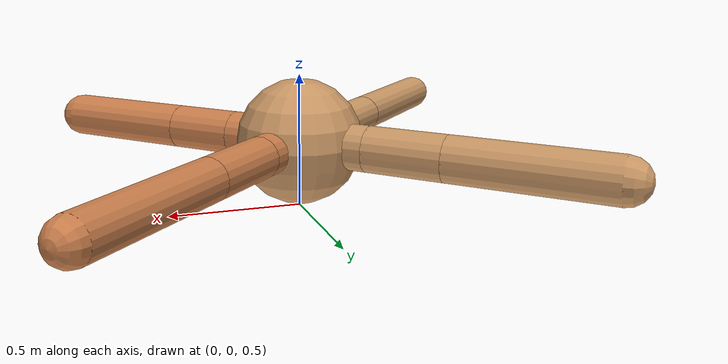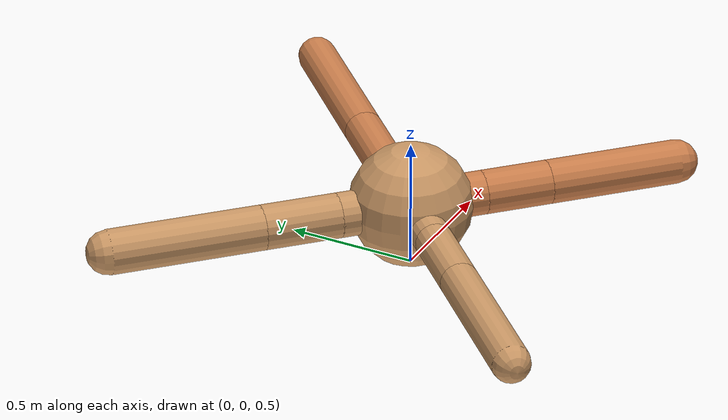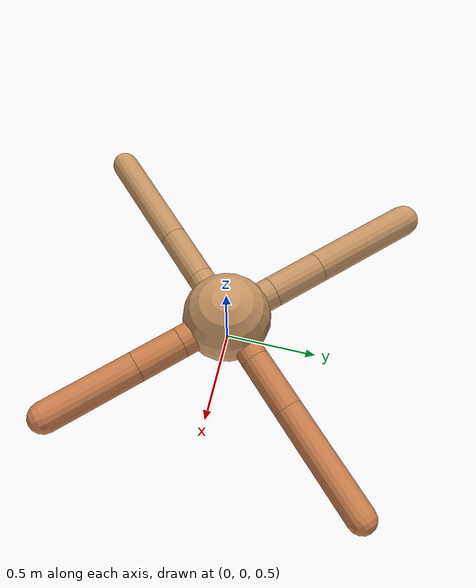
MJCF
<?xml version="1.0" ?>
<mujoco model="ant">

	<compiler angle="degree" coordinate="local" inertiafromgeom="true"/>

	<option integrator="RK4" timestep="0.01"/>

	<custom>

		<numeric data="0.0 0.0 0.55 1.0 0.0 0.0 0.0 0.0 1.0 0.0 -1.0 0.0 -1.0 0.0 1.0" name="init_qpos"/>

	</custom>

	<default>

		<joint armature="1" damping="1" limited="true"/>

		<geom conaffinity="0" condim="3" density="5.0" friction="1.5 0.1 0.1" margin="0.01" rgba="0.8 0.6 0.4 1"/>

	</default>

	<worldbody>

		<body name="torso" pos="0 0 0.75">

			<geom name="torso_geom" pos="0 0 0" size="0.235405755422164" type="sphere"/>

			<!--joint armature="0" damping="0" limited="false" margin="0.01" name="root" pos="0 0 0" type="free"/-->

			<body name="front_left_leg" pos="0 0 0">

				<geom fromto="0 0 0 0.2 0.2 0" name="aux_1_geom" size="0.07502529329345674" type="capsule" rgba=".8 .5 .3 1"/>

				<body name="aux_1" pos="0.2 0.2 0">

					<joint axis="0 0 1" name="hip_1" pos="0.0 0.0 0.0" range="-40 40" type="hinge"/>

					<geom fromto="0 0 0 0.21893847318781612 0.21893847318781612 0" name="left_leg_geom" size="0.07502529329345674" type="capsule" rgba=".8 .5 .3 1"/>

					<body pos="0.21893847318781612 0.21893847318781612 0" name="front_left_foot">

						<joint axis="-1 1 0" name="ankle_1" pos="0.0 0.0 0.0" range="30 100" type="hinge"/>

						<geom fromto="0 0 0 0.43787694637563224 0.43787694637563224 0" name="left_ankle_geom" size="0.07502529329345674" type="capsule" rgba=".8 .5 .3 1"/>

					</body>

				</body>

			</body>

			<body name="front_right_leg" pos="0 0 0">

				<geom fromto="0 0 0 -0.2 0.2 0" name="aux_2_geom" size="0.08539239927398455" type="capsule"/>

				<body name="aux_2" pos="-0.2 0.2 0">

					<joint axis="0 0 1" name="hip_2" pos="0.0 0.0 0.0" range="-40 40" type="hinge"/>

					<geom fromto="0 0 0 -0.20729171020251075 0.20729171020251075 0" name="right_leg_geom" size="0.08539239927398455" type="capsule"/>

					<body pos="-0.20729171020251075 0.20729171020251075 0" name="front_right_foot">

						<joint axis="1 1 0" name="ankle_2" pos="0.0 0.0 0.0" range="-100 -30" type="hinge"/>

						<geom fromto="0 0 0 -0.4145834204050215 0.4145834204050215 0" name="right_ankle_geom" size="0.08539239927398455" type="capsule"/>

					</body>

				</body>

			</body>

			<body name="left_back_leg" pos="0 0 0">

				<geom fromto="0 0 0 -0.2 -0.2 0" name="aux_3_geom" size="0.07283661057609016" type="capsule"/>

				<body name="aux_3" pos="-0.2 -0.2 0">

					<joint axis="0 0 1" name="hip_3" pos="0.0 0.0 0.0" range="-40 40" type="hinge"/>

					<geom fromto="0 0 0 -0.20758681584564795 -0.20758681584564795 0" name="back_leg_geom" size="0.07283661057609016" type="capsule"/>

					<body pos="-0.20758681584564795 -0.20758681584564795 0" name="left_back_foot">

						<joint axis="-1 1 0" name="ankle_3" pos="0.0 0.0 0.0" range="-100 -30" type="hinge"/>

						<geom fromto="0 0 0 -0.4151736316912959 -0.4151736316912959 0" name="third_ankle_geom" size="0.07283661057609016" type="capsule"/>

					</body>

				</body>

			</body>

			<body name="right_back_leg" pos="0 0 0">

				<geom fromto="0 0 0 0.2 -0.2 0" name="aux_4_geom" size="0.08392591681103685" type="capsule" rgba=".8 .5 .3 1"/>

				<body name="aux_4" pos="0.2 -0.2 0">

					<joint axis="0 0 1" name="hip_4" pos="0.0 0.0 0.0" range="-40 40" type="hinge"/>

					<geom fromto="0 0 0 0.18173815148973002 -0.18173815148973002 0" name="rightback_leg_geom" size="0.08392591681103685" type="capsule" rgba=".8 .5 .3 1"/>

					<body pos="0.18173815148973002 -0.18173815148973002 0" name="right_back_foot">

						<joint axis="1 1 0" name="ankle_4" pos="0.0 0.0 0.0" range="30 100" type="hinge"/>

						<geom fromto="0 0 0 0.36347630297946004 -0.36347630297946004 0" name="fourth_ankle_geom" size="0.08392591681103685" type="capsule" rgba=".8 .5 .3 1"/>

					</body>

				</body>

			</body>

		</body>

	</worldbody>

	<actuator>

		<motor ctrllimited="true" ctrlrange="-1.0 1.0" joint="hip_4" gear="150"/>

		<motor ctrllimited="true" ctrlrange="-1.0 1.0" joint="ankle_4" gear="150"/>

		<motor ctrllimited="true" ctrlrange="-1.0 1.0" joint="hip_1" gear="150"/>

		<motor ctrllimited="true" ctrlrange="-1.0 1.0" joint="ankle_1" gear="150"/>

		<motor ctrllimited="true" ctrlrange="-1.0 1.0" joint="hip_2" gear="150"/>

		<motor ctrllimited="true" ctrlrange="-1.0 1.0" joint="ankle_2" gear="150"/>

		<motor ctrllimited="true" ctrlrange="-1.0 1.0" joint="hip_3" gear="150"/>

		<motor ctrllimited="true" ctrlrange="-1.0 1.0" joint="ankle_3" gear="150"/>

	</actuator>

</mujoco>
